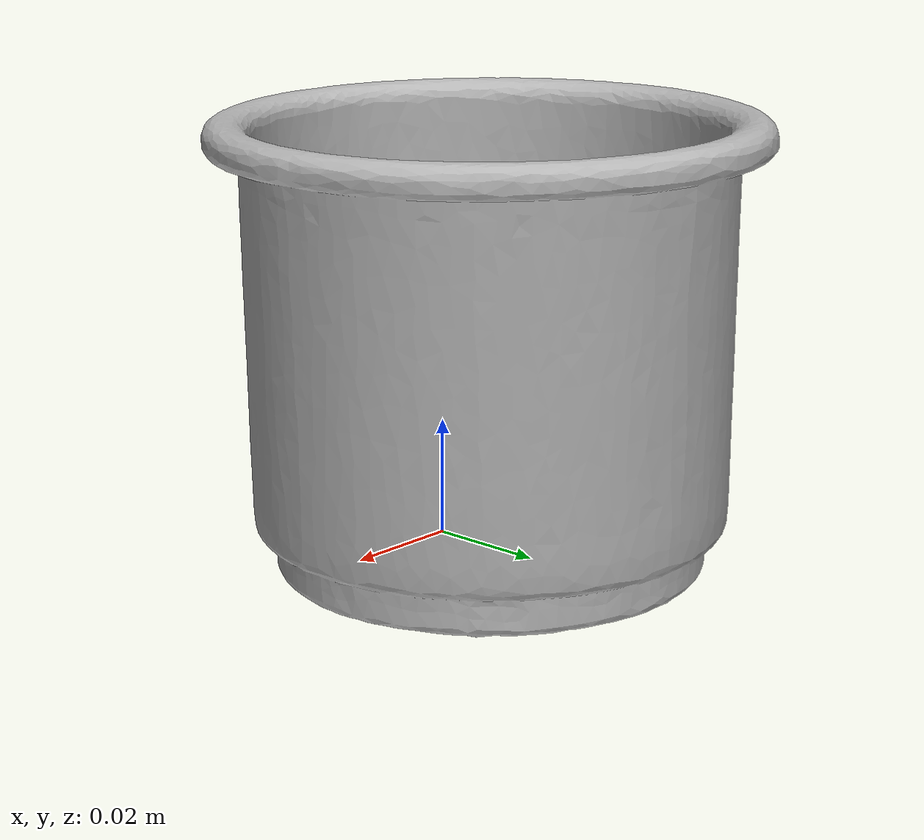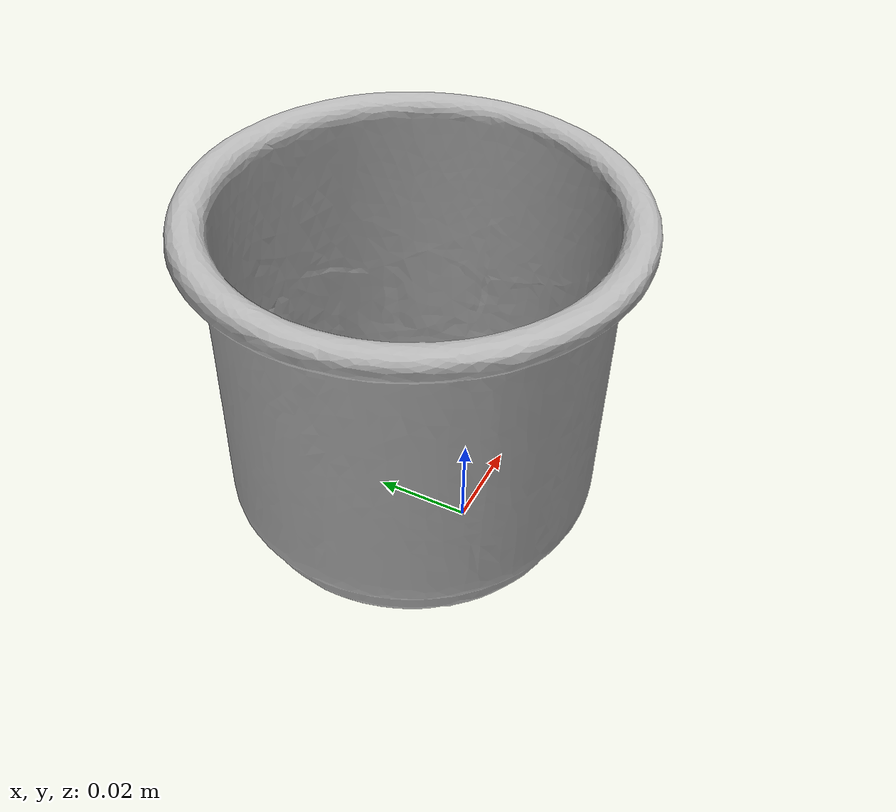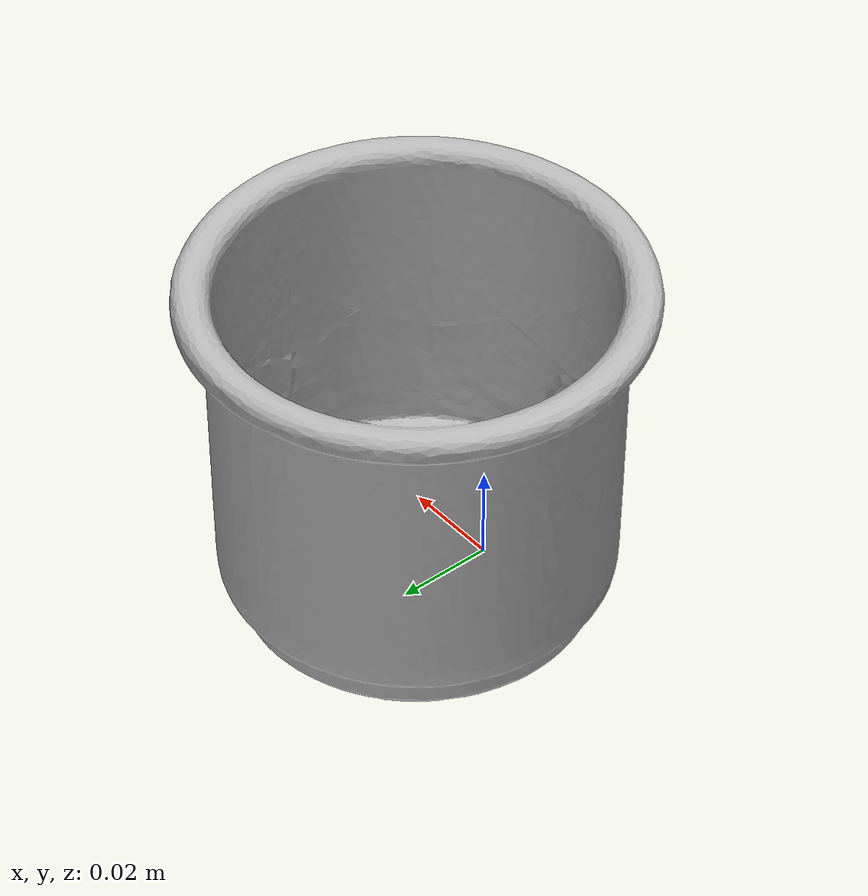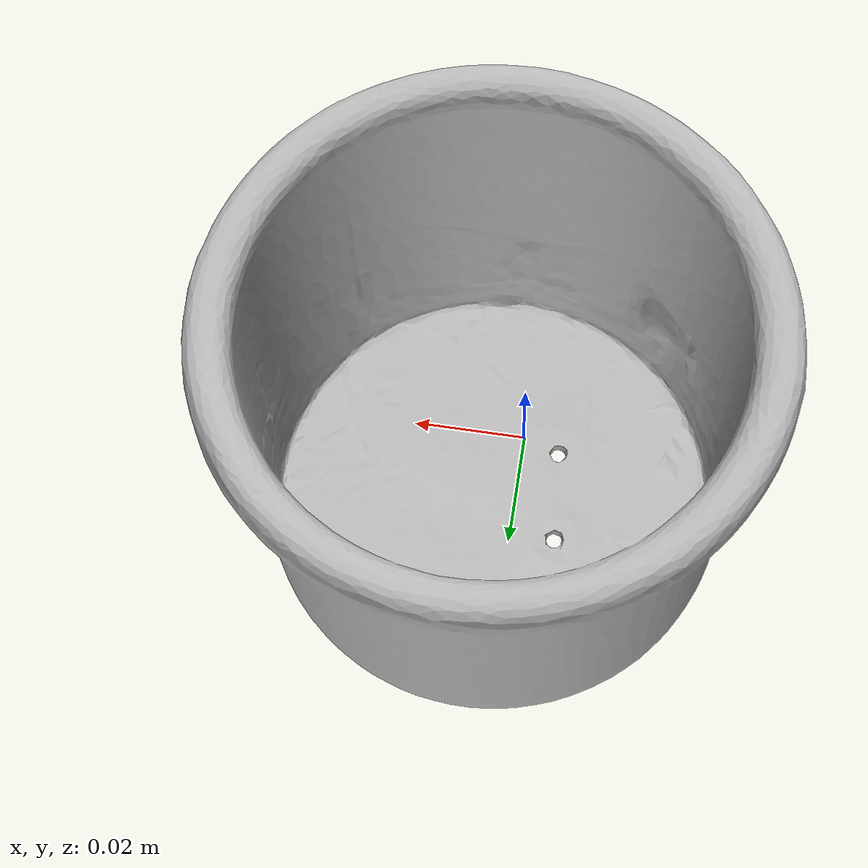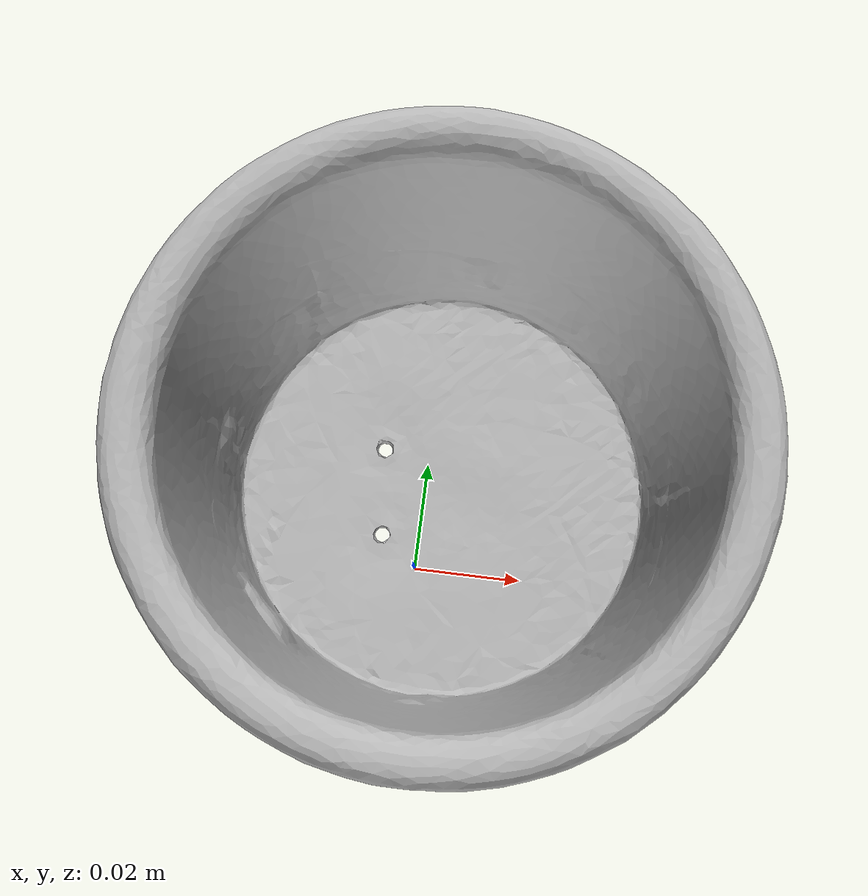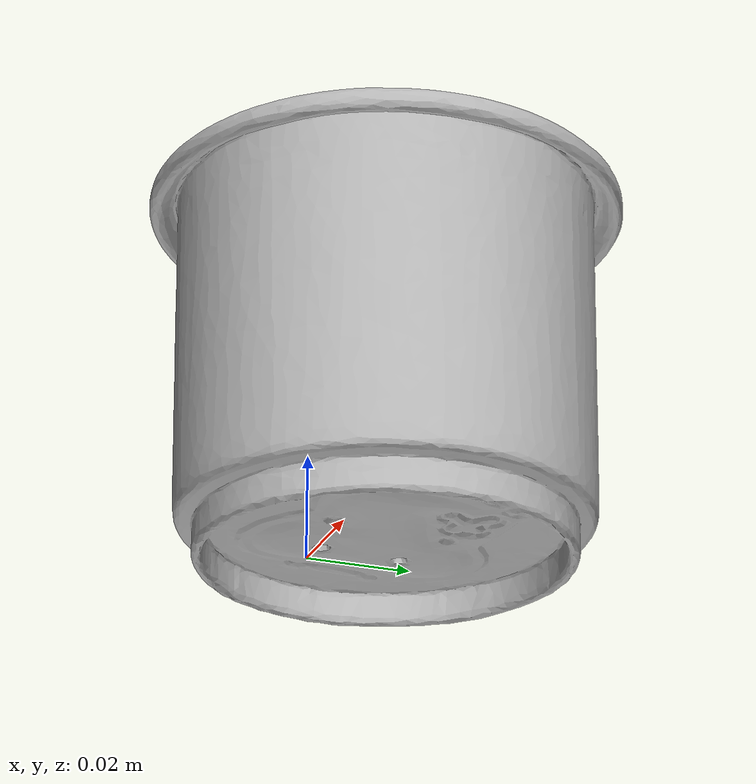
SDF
<?xml version='1.0'?>
<sdf version="1.4">
  <model name="h_cups">
    <static>false</static>
    <link name="link">
      <inertial>
        <pose>0.0025358419185259715 0.014808556940255404 0.03593436586751651 0.8873852256167685 -1.504929262448427 -1.4597592720546588</pose>
        <mass>4.665322621017384e-05</mass>
        <inertia>
          <ixx>6.433750048180891e-08</ixx>
          <ixy>-1.1110989677018342e-24</ixy>
          <ixz>-3.886485268554008e-24</ixz>
          <iyy>6.014406960726109e-08</iyy>
          <iyz>-1.2156984177555794e-23</iyz>
          <izz>6.00005689820989e-08</izz>
        </inertia>
      </inertial>
      <collision name="collision">
        <geometry>
          <mesh>
            <!-- Use a downsampled mesh for collisions -->
            <uri>model://065-h_cups/google_16k/065-h_cups.obj</uri>
            </mesh>
        </geometry>
        <surface>
          <friction>
            <ode>
              <mu>0.9</mu>
              <mu2>0.9</mu2>
            </ode>
          </friction>
          <contact>
            <ode>
              <kp>1000000000000.0</kp>
              <kd>1</kd>
              <min_depth>0.0001</min_depth>
              <max_vel>0.01</max_vel>
            </ode>
          </contact>
          <bounce>
            <restitution_coefficient>0.1</restitution_coefficient>
            <threshold>1000.0</threshold>
          </bounce>
        </surface>
      </collision>
      <visual name="visual">
        <geometry>
          <mesh>
            <uri>model://065-h_cups/google_16k/065-h_cups.dae</uri>
            </mesh>
        </geometry>
      </visual>
    </link>
  </model>
</sdf>
